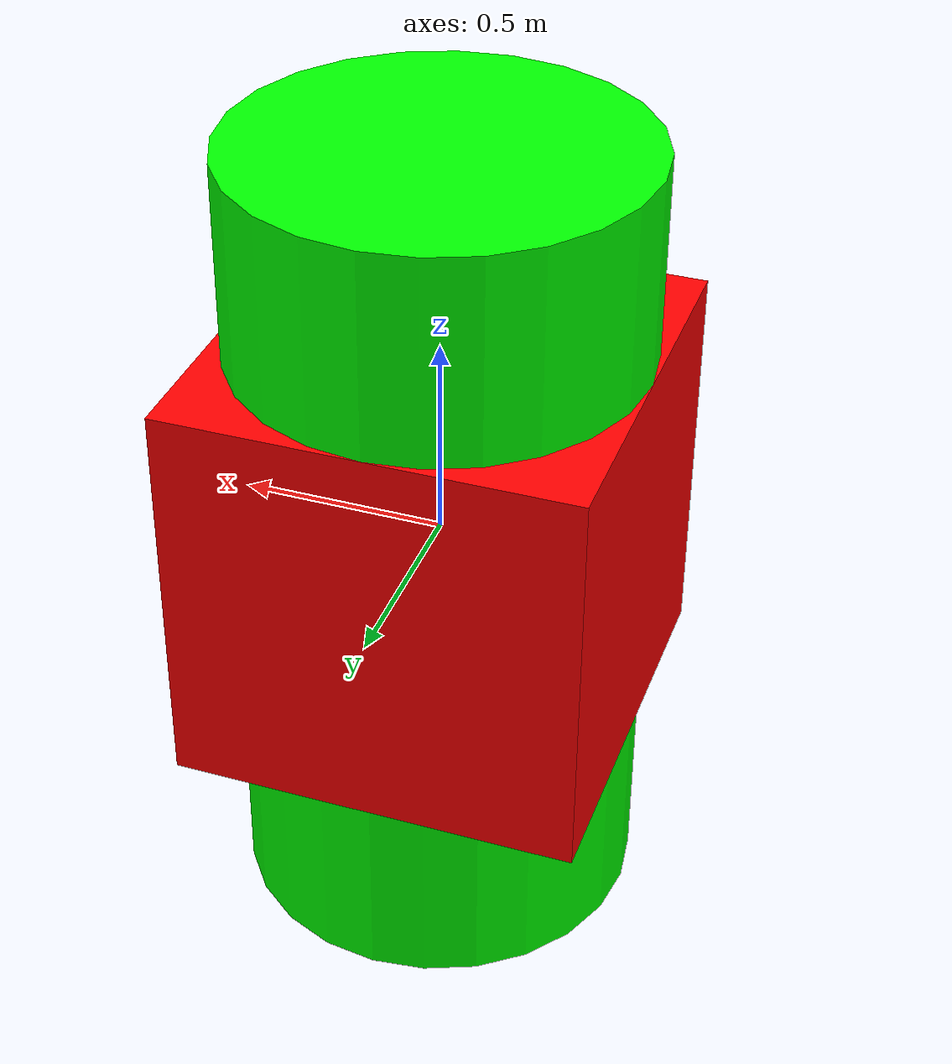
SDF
<?xml version="1.0"?>
<sdf version="1.6">
  <model name="moving_joint_model">
    <static>false</static>

    <link name="base_link">
      <visual>
        <geometry>
          <box>
            <size>1 1 1</size>
          </box>
        </geometry>
        <material>
          <ambient>1 0 0 1</ambient> <!-- Red color -->
        </material>
      </visual>
      <collision>
        <geometry>
          <box>
            <size>1 1 1</size>
          </box>
        </geometry>
      </collision>
    </link>

    <link name="moving_link">
      <visual>
        <geometry>
          <cylinder>
            <radius>0.5</radius>
            <length>2.0</length>
          </cylinder>
        </geometry>
        <material>
          <ambient>0 1 0 1</ambient> <!-- Green color -->
        </material>
      </visual>
      <collision>
        <geometry>
          <cylinder>
            <radius>0.5</radius>
            <length>2.0</length>
          </cylinder>
        </geometry>
      </collision>
    </link>

    <joint name="moving_joint" type="revolute">
      <parent>base_link</parent>
      <child>moving_link</child>
      <pose>0 0 0 0 0 0</pose>
      <axis>
        <xyz>0 0 1</xyz>
        <limit>
          <lower>-1.57</lower>
          <upper>1.57</upper>
          <effort>100</effort>
          <velocity>1</velocity>
        </limit>
      </axis>
    </joint>

    <plugin name="joint_mover_plugin" filename="libjoint_mover_plugin.so"/>
  </model>
</sdf>
